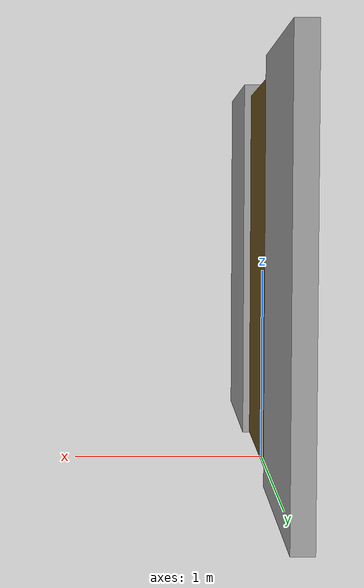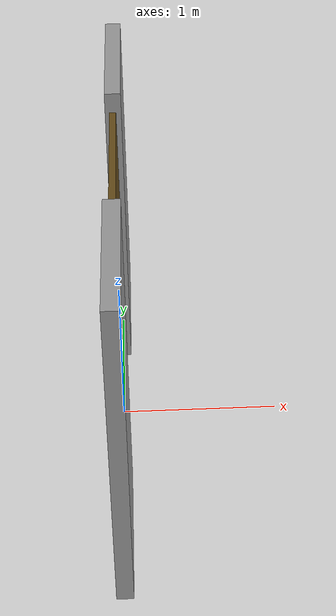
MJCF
<mujoco model="door_scene">
    <option gravity="0 0 -9.81" />
    <compiler angle="radian" />

    <worldbody>

        <body name="door" pos="0 0 0" quat="1 0 0 0">
            <freejoint name="door_root" />

            <geom name="wall_geom_right" type="box" size="0.05 0.5 1.025" pos="0 -1.1 1.025"
                rgba="0.6 0.6 0.6 1"
                contype="2" conaffinity="1"/>
            <geom name="wall_geom_left" type="box" size="0.05 0.5 1.025" pos="0 1.1 1.025"
                rgba="0.6 0.6 0.6 1"
                contype="2" conaffinity="1"/>

            <body name="door_panel" pos="0 0 0">
                <joint name="door_joint" type="hinge" pos="0 0.5 0" axis="0 0 1" range="-1.57 0" stiffness="0" damping="1" springref="0" />
                <geom name="door_geom" type="box" size="0.02 0.5 0.975" pos="0 0 1" rgba="0.4 0.3 0.1 1.0" contype="2" conaffinity="1" mass="20" />
            </body>
        </body>
    </worldbody>

</mujoco>
